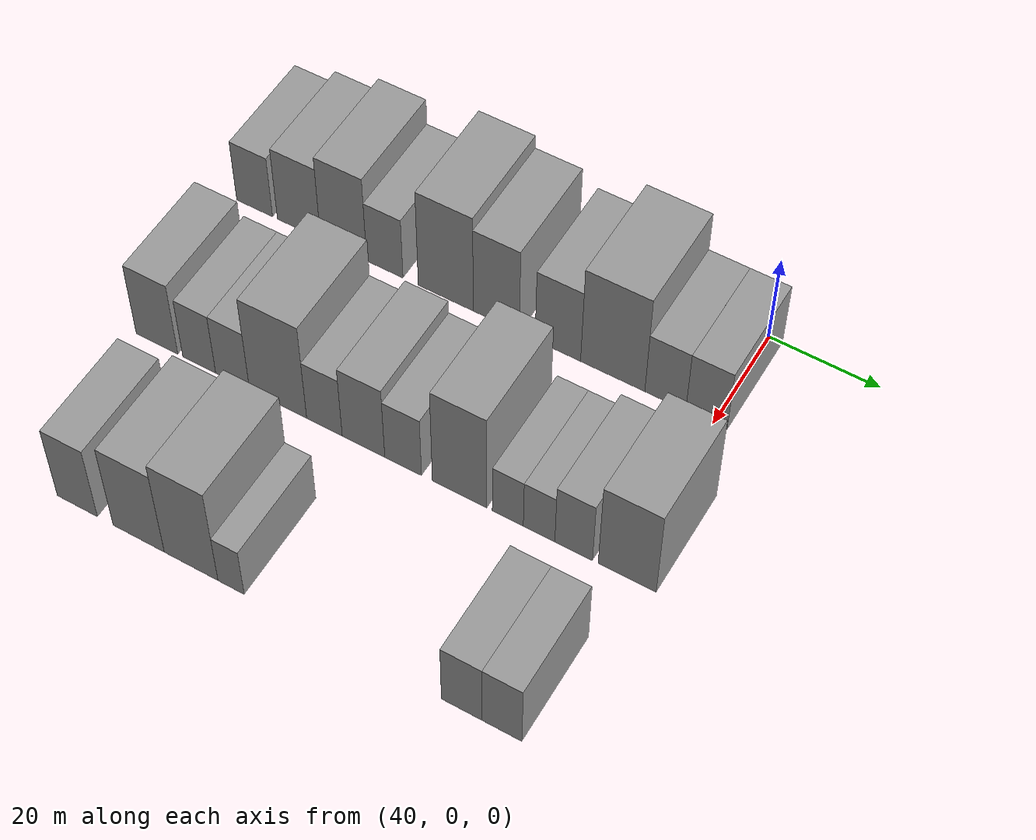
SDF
<sdf version="1.6">
 <world name="default">
  <model name="building_28">
   <static>1</static>
   <pose>50.0000 -87.8930 0 0.000000 0.000000 0.000000</pose>
   <link name="link">
    <pose>0 0 7.50 0 0 0</pose>
    <collision name="collision"><geometry><box><size>20.0000 7.3246 15.0000</size></box></geometry></collision>
    <visual name="visual">
     <cast_shadows>0</cast_shadows>
     <geometry><box><size>20.0000 7.3246 15.0000</size></box></geometry>
     <material>
      <script>
       <uri>model://grey_wall/materials/scripts</uri>
       <uri>model://grey_wall/materials/textures</uri>
       <name>vrc/grey_wall</name>
      </script>
     </material>
    </visual>
   </link>
  </model>
  <model name="building_29">
   <static>1</static>
   <pose>50.0000 -78.8651 0 0.000000 0.000000 0.000000</pose>
   <link name="link">
    <pose>0 0 9.00 0 0 0</pose>
    <collision name="collision"><geometry><box><size>20.0000 8.7313 18.0000</size></box></geometry></collision>
    <visual name="visual">
     <cast_shadows>0</cast_shadows>
     <geometry><box><size>20.0000 8.7313 18.0000</size></box></geometry>
     <material>
      <script>
       <uri>model://grey_wall/materials/scripts</uri>
       <uri>model://grey_wall/materials/textures</uri>
       <name>vrc/grey_wall</name>
      </script>
     </material>
    </visual>
   </link>
  </model>
  <model name="building_30">
   <static>1</static>
   <pose>50.0000 -69.8941 0 0.000000 0.000000 0.000000</pose>
   <link name="link">
    <pose>0 0 10.50 0 0 0</pose>
    <collision name="collision"><geometry><box><size>20.0000 9.2106 21.0000</size></box></geometry></collision>
    <visual name="visual">
     <cast_shadows>0</cast_shadows>
     <geometry><box><size>20.0000 9.2106 21.0000</size></box></geometry>
     <material>
      <script>
       <uri>model://grey_wall/materials/scripts</uri>
       <uri>model://grey_wall/materials/textures</uri>
       <name>vrc/grey_wall</name>
      </script>
     </material>
    </visual>
   </link>
  </model>
  <model name="building_31">
   <static>1</static>
   <pose>50.0000 -61.7174 0 0.000000 0.000000 0.000000</pose>
   <link name="link">
    <pose>0 0 7.50 0 0 0</pose>
    <collision name="collision"><geometry><box><size>20.0000 7.1428 15.0000</size></box></geometry></collision>
    <visual name="visual">
     <cast_shadows>0</cast_shadows>
     <geometry><box><size>20.0000 7.1428 15.0000</size></box></geometry>
     <material>
      <script>
       <uri>model://grey_wall/materials/scripts</uri>
       <uri>model://grey_wall/materials/textures</uri>
       <name>vrc/grey_wall</name>
      </script>
     </material>
    </visual>
   </link>
  </model>
  <model name="building_32">
   <static>1</static>
   <pose>50.0000 -49.8279 0 0.000000 0.000000 0.000000</pose>
   <link name="link">
    <pose>0 0 12.00 0 0 0</pose>
    <collision name="collision"><geometry><box><size>20.0000 10.6363 24.0000</size></box></geometry></collision>
    <visual name="visual">
     <cast_shadows>0</cast_shadows>
     <geometry><box><size>20.0000 10.6363 24.0000</size></box></geometry>
     <material>
      <script>
       <uri>model://grey_wall/materials/scripts</uri>
       <uri>model://grey_wall/materials/textures</uri>
       <name>vrc/grey_wall</name>
      </script>
     </material>
    </visual>
   </link>
  </model>
  <model name="building_33">
   <static>1</static>
   <pose>50.0000 -40.1255 0 0.000000 0.000000 0.000000</pose>
   <link name="link">
    <pose>0 0 10.50 0 0 0</pose>
    <collision name="collision"><geometry><box><size>20.0000 8.7684 21.0000</size></box></geometry></collision>
    <visual name="visual">
     <cast_shadows>0</cast_shadows>
     <geometry><box><size>20.0000 8.7684 21.0000</size></box></geometry>
     <material>
      <script>
       <uri>model://grey_wall/materials/scripts</uri>
       <uri>model://grey_wall/materials/textures</uri>
       <name>vrc/grey_wall</name>
      </script>
     </material>
    </visual>
   </link>
  </model>
  <model name="building_34">
   <static>1</static>
   <pose>50.0000 -28.4858 0 0.000000 0.000000 0.000000</pose>
   <link name="link">
    <pose>0 0 9.00 0 0 0</pose>
    <collision name="collision"><geometry><box><size>20.0000 8.5110 18.0000</size></box></geometry></collision>
    <visual name="visual">
     <cast_shadows>0</cast_shadows>
     <geometry><box><size>20.0000 8.5110 18.0000</size></box></geometry>
     <material>
      <script>
       <uri>model://grey_wall/materials/scripts</uri>
       <uri>model://grey_wall/materials/textures</uri>
       <name>vrc/grey_wall</name>
      </script>
     </material>
    </visual>
   </link>
  </model>
  <model name="building_35">
   <static>1</static>
   <pose>50.0000 -18.3038 0 0.000000 0.000000 0.000000</pose>
   <link name="link">
    <pose>0 0 12.00 0 0 0</pose>
    <collision name="collision"><geometry><box><size>20.0000 11.8528 24.0000</size></box></geometry></collision>
    <visual name="visual">
     <cast_shadows>0</cast_shadows>
     <geometry><box><size>20.0000 11.8528 24.0000</size></box></geometry>
     <material>
      <script>
       <uri>model://grey_wall/materials/scripts</uri>
       <uri>model://grey_wall/materials/textures</uri>
       <name>vrc/grey_wall</name>
      </script>
     </material>
    </visual>
   </link>
  </model>
  <model name="building_36">
   <static>1</static>
   <pose>50.0000 -8.6696 0 0.000000 0.000000 0.000000</pose>
   <link name="link">
    <pose>0 0 7.50 0 0 0</pose>
    <collision name="collision"><geometry><box><size>20.0000 7.4157 15.0000</size></box></geometry></collision>
    <visual name="visual">
     <cast_shadows>0</cast_shadows>
     <geometry><box><size>20.0000 7.4157 15.0000</size></box></geometry>
     <material>
      <script>
       <uri>model://grey_wall/materials/scripts</uri>
       <uri>model://grey_wall/materials/textures</uri>
       <name>vrc/grey_wall</name>
      </script>
     </material>
    </visual>
   </link>
  </model>
  <model name="building_37">
   <static>1</static>
   <pose>50.0000 -1.2589 0 0.000000 0.000000 0.000000</pose>
   <link name="link">
    <pose>0 0 7.50 0 0 0</pose>
    <collision name="collision"><geometry><box><size>20.0000 7.4055 15.0000</size></box></geometry></collision>
    <visual name="visual">
     <cast_shadows>0</cast_shadows>
     <geometry><box><size>20.0000 7.4055 15.0000</size></box></geometry>
     <material>
      <script>
       <uri>model://grey_wall/materials/scripts</uri>
       <uri>model://grey_wall/materials/textures</uri>
       <name>vrc/grey_wall</name>
      </script>
     </material>
    </visual>
   </link>
  </model>
  <model name="building_105">
   <static>1</static>
   <pose>82.0000 -85.6844 0 0.000000 0.000000 0.000000</pose>
   <link name="link">
    <pose>0 0 9.00 0 0 0</pose>
    <collision name="collision"><geometry><box><size>20.0000 8.2803 18.0000</size></box></geometry></collision>
    <visual name="visual">
     <cast_shadows>0</cast_shadows>
     <geometry><box><size>20.0000 8.2803 18.0000</size></box></geometry>
     <material>
      <script>
       <uri>model://grey_wall/materials/scripts</uri>
       <uri>model://grey_wall/materials/textures</uri>
       <name>vrc/grey_wall</name>
      </script>
     </material>
    </visual>
   </link>
  </model>
  <model name="building_106">
   <static>1</static>
   <pose>82.0000 -77.3197 0 0.000000 0.000000 0.000000</pose>
   <link name="link">
    <pose>0 0 7.50 0 0 0</pose>
    <collision name="collision"><geometry><box><size>20.0000 6.4492 15.0000</size></box></geometry></collision>
    <visual name="visual">
     <cast_shadows>0</cast_shadows>
     <geometry><box><size>20.0000 6.4492 15.0000</size></box></geometry>
     <material>
      <script>
       <uri>model://grey_wall/materials/scripts</uri>
       <uri>model://grey_wall/materials/textures</uri>
       <name>vrc/grey_wall</name>
      </script>
     </material>
    </visual>
   </link>
  </model>
  <model name="building_107">
   <static>1</static>
   <pose>82.0000 -70.7892 0 0.000000 0.000000 0.000000</pose>
   <link name="link">
    <pose>0 0 7.50 0 0 0</pose>
    <collision name="collision"><geometry><box><size>20.0000 6.6118 15.0000</size></box></geometry></collision>
    <visual name="visual">
     <cast_shadows>0</cast_shadows>
     <geometry><box><size>20.0000 6.6118 15.0000</size></box></geometry>
     <material>
      <script>
       <uri>model://grey_wall/materials/scripts</uri>
       <uri>model://grey_wall/materials/textures</uri>
       <name>vrc/grey_wall</name>
      </script>
     </material>
    </visual>
   </link>
  </model>
  <model name="building_108">
   <static>1</static>
   <pose>82.0000 -62.0053 0 0.000000 0.000000 0.000000</pose>
   <link name="link">
    <pose>0 0 12.00 0 0 0</pose>
    <collision name="collision"><geometry><box><size>20.0000 10.9559 24.0000</size></box></geometry></collision>
    <visual name="visual">
     <cast_shadows>0</cast_shadows>
     <geometry><box><size>20.0000 10.9559 24.0000</size></box></geometry>
     <material>
      <script>
       <uri>model://grey_wall/materials/scripts</uri>
       <uri>model://grey_wall/materials/textures</uri>
       <name>vrc/grey_wall</name>
      </script>
     </material>
    </visual>
   </link>
  </model>
  <model name="building_109">
   <static>1</static>
   <pose>82.0000 -53.1599 0 0.000000 0.000000 0.000000</pose>
   <link name="link">
    <pose>0 0 7.50 0 0 0</pose>
    <collision name="collision"><geometry><box><size>20.0000 6.7348 15.0000</size></box></geometry></collision>
    <visual name="visual">
     <cast_shadows>0</cast_shadows>
     <geometry><box><size>20.0000 6.7348 15.0000</size></box></geometry>
     <material>
      <script>
       <uri>model://grey_wall/materials/scripts</uri>
       <uri>model://grey_wall/materials/textures</uri>
       <name>vrc/grey_wall</name>
      </script>
     </material>
    </visual>
   </link>
  </model>
  <model name="building_110">
   <static>1</static>
   <pose>82.0000 -45.8063 0 0.000000 0.000000 0.000000</pose>
   <link name="link">
    <pose>0 0 9.00 0 0 0</pose>
    <collision name="collision"><geometry><box><size>20.0000 7.9724 18.0000</size></box></geometry></collision>
    <visual name="visual">
     <cast_shadows>0</cast_shadows>
     <geometry><box><size>20.0000 7.9724 18.0000</size></box></geometry>
     <material>
      <script>
       <uri>model://grey_wall/materials/scripts</uri>
       <uri>model://grey_wall/materials/textures</uri>
       <name>vrc/grey_wall</name>
      </script>
     </material>
    </visual>
   </link>
  </model>
  <model name="building_111">
   <static>1</static>
   <pose>82.0000 -38.4213 0 0.000000 0.000000 0.000000</pose>
   <link name="link">
    <pose>0 0 7.50 0 0 0</pose>
    <collision name="collision"><geometry><box><size>20.0000 6.7975 15.0000</size></box></geometry></collision>
    <visual name="visual">
     <cast_shadows>0</cast_shadows>
     <geometry><box><size>20.0000 6.7975 15.0000</size></box></geometry>
     <material>
      <script>
       <uri>model://grey_wall/materials/scripts</uri>
       <uri>model://grey_wall/materials/textures</uri>
       <name>vrc/grey_wall</name>
      </script>
     </material>
    </visual>
   </link>
  </model>
  <model name="building_112">
   <static>1</static>
   <pose>82.0000 -28.0802 0 0.000000 0.000000 0.000000</pose>
   <link name="link">
    <pose>0 0 12.00 0 0 0</pose>
    <collision name="collision"><geometry><box><size>20.0000 9.8848 24.0000</size></box></geometry></collision>
    <visual name="visual">
     <cast_shadows>0</cast_shadows>
     <geometry><box><size>20.0000 9.8848 24.0000</size></box></geometry>
     <material>
      <script>
       <uri>model://grey_wall/materials/scripts</uri>
       <uri>model://grey_wall/materials/textures</uri>
       <name>vrc/grey_wall</name>
      </script>
     </material>
    </visual>
   </link>
  </model>
  <model name="building_113">
   <static>1</static>
   <pose>82.0000 -19.3575 0 0.000000 0.000000 0.000000</pose>
   <link name="link">
    <pose>0 0 6.00 0 0 0</pose>
    <collision name="collision"><geometry><box><size>20.0000 5.5605 12.0000</size></box></geometry></collision>
    <visual name="visual">
     <cast_shadows>0</cast_shadows>
     <geometry><box><size>20.0000 5.5605 12.0000</size></box></geometry>
     <material>
      <script>
       <uri>model://grey_wall/materials/scripts</uri>
       <uri>model://grey_wall/materials/textures</uri>
       <name>vrc/grey_wall</name>
      </script>
     </material>
    </visual>
   </link>
  </model>
  <model name="building_114">
   <static>1</static>
   <pose>82.0000 -13.7772 0 0.000000 0.000000 0.000000</pose>
   <link name="link">
    <pose>0 0 6.00 0 0 0</pose>
    <collision name="collision"><geometry><box><size>20.0000 5.6001 12.0000</size></box></geometry></collision>
    <visual name="visual">
     <cast_shadows>0</cast_shadows>
     <geometry><box><size>20.0000 5.6001 12.0000</size></box></geometry>
     <material>
      <script>
       <uri>model://grey_wall/materials/scripts</uri>
       <uri>model://grey_wall/materials/textures</uri>
       <name>vrc/grey_wall</name>
      </script>
     </material>
    </visual>
   </link>
  </model>
  <model name="building_115">
   <static>1</static>
   <pose>82.0000 -7.6614 0 0.000000 0.000000 0.000000</pose>
   <link name="link">
    <pose>0 0 7.50 0 0 0</pose>
    <collision name="collision"><geometry><box><size>20.0000 6.6314 15.0000</size></box></geometry></collision>
    <visual name="visual">
     <cast_shadows>0</cast_shadows>
     <geometry><box><size>20.0000 6.6314 15.0000</size></box></geometry>
     <material>
      <script>
       <uri>model://grey_wall/materials/scripts</uri>
       <uri>model://grey_wall/materials/textures</uri>
       <name>vrc/grey_wall</name>
      </script>
     </material>
    </visual>
   </link>
  </model>
  <model name="building_116">
   <static>1</static>
   <pose>82.0000 1.6792 0 0.000000 0.000000 0.000000</pose>
   <link name="link">
    <pose>0 0 10.50 0 0 0</pose>
    <collision name="collision"><geometry><box><size>20.0000 10.0498 21.0000</size></box></geometry></collision>
    <visual name="visual">
     <cast_shadows>0</cast_shadows>
     <geometry><box><size>20.0000 10.0498 21.0000</size></box></geometry>
     <material>
      <script>
       <uri>model://grey_wall/materials/scripts</uri>
       <uri>model://grey_wall/materials/textures</uri>
       <name>vrc/grey_wall</name>
      </script>
     </material>
    </visual>
   </link>
  </model>
  <model name="building_183">
   <static>1</static>
   <pose>114.0000 -78.2723 0 0.000000 0.000000 0.000000</pose>
   <link name="link">
    <pose>0 0 9.00 0 0 0</pose>
    <collision name="collision"><geometry><box><size>20.0000 7.6823 18.0000</size></box></geometry></collision>
    <visual name="visual">
     <cast_shadows>0</cast_shadows>
     <geometry><box><size>20.0000 7.6823 18.0000</size></box></geometry>
     <material>
      <script>
       <uri>model://grey_wall/materials/scripts</uri>
       <uri>model://grey_wall/materials/textures</uri>
       <name>vrc/grey_wall</name>
      </script>
     </material>
    </visual>
   </link>
  </model>
  <model name="building_184">
   <static>1</static>
   <pose>114.0000 -66.6105 0 0.000000 0.000000 0.000000</pose>
   <link name="link">
    <pose>0 0 10.50 0 0 0</pose>
    <collision name="collision"><geometry><box><size>20.0000 9.6412 21.0000</size></box></geometry></collision>
    <visual name="visual">
     <cast_shadows>0</cast_shadows>
     <geometry><box><size>20.0000 9.6412 21.0000</size></box></geometry>
     <material>
      <script>
       <uri>model://grey_wall/materials/scripts</uri>
       <uri>model://grey_wall/materials/textures</uri>
       <name>vrc/grey_wall</name>
      </script>
     </material>
    </visual>
   </link>
  </model>
  <model name="building_185">
   <static>1</static>
   <pose>114.0000 -56.8104 0 0.000000 0.000000 0.000000</pose>
   <link name="link">
    <pose>0 0 12.00 0 0 0</pose>
    <collision name="collision"><geometry><box><size>20.0000 9.9591 24.0000</size></box></geometry></collision>
    <visual name="visual">
     <cast_shadows>0</cast_shadows>
     <geometry><box><size>20.0000 9.9591 24.0000</size></box></geometry>
     <material>
      <script>
       <uri>model://grey_wall/materials/scripts</uri>
       <uri>model://grey_wall/materials/textures</uri>
       <name>vrc/grey_wall</name>
      </script>
     </material>
    </visual>
   </link>
  </model>
  <model name="building_186">
   <static>1</static>
   <pose>114.0000 -49.4302 0 0.000000 0.000000 0.000000</pose>
   <link name="link">
    <pose>0 0 6.00 0 0 0</pose>
    <collision name="collision"><geometry><box><size>20.0000 4.8012 12.0000</size></box></geometry></collision>
    <visual name="visual">
     <cast_shadows>0</cast_shadows>
     <geometry><box><size>20.0000 4.8012 12.0000</size></box></geometry>
     <material>
      <script>
       <uri>model://grey_wall/materials/scripts</uri>
       <uri>model://grey_wall/materials/textures</uri>
       <name>vrc/grey_wall</name>
      </script>
     </material>
    </visual>
   </link>
  </model>
  <model name="building_187">
   <static>1</static>
   <pose>114.0000 -8.6148 0 0.000000 0.000000 0.000000</pose>
   <link name="link">
    <pose>0 0 7.50 0 0 0</pose>
    <collision name="collision"><geometry><box><size>20.0000 6.9432 15.0000</size></box></geometry></collision>
    <visual name="visual">
     <cast_shadows>0</cast_shadows>
     <geometry><box><size>20.0000 6.9432 15.0000</size></box></geometry>
     <material>
      <script>
       <uri>model://grey_wall/materials/scripts</uri>
       <uri>model://grey_wall/materials/textures</uri>
       <name>vrc/grey_wall</name>
      </script>
     </material>
    </visual>
   </link>
  </model>
  <model name="building_188">
   <static>1</static>
   <pose>114.0000 -1.7771 0 0.000000 0.000000 0.000000</pose>
   <link name="link">
    <pose>0 0 7.50 0 0 0</pose>
    <collision name="collision"><geometry><box><size>20.0000 6.7323 15.0000</size></box></geometry></collision>
    <visual name="visual">
     <cast_shadows>0</cast_shadows>
     <geometry><box><size>20.0000 6.7323 15.0000</size></box></geometry>
     <material>
      <script>
       <uri>model://grey_wall/materials/scripts</uri>
       <uri>model://grey_wall/materials/textures</uri>
       <name>vrc/grey_wall</name>
      </script>
     </material>
    </visual>
   </link>
  </model>
 </world>
</sdf>
